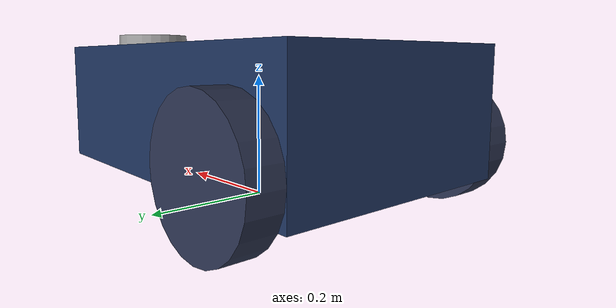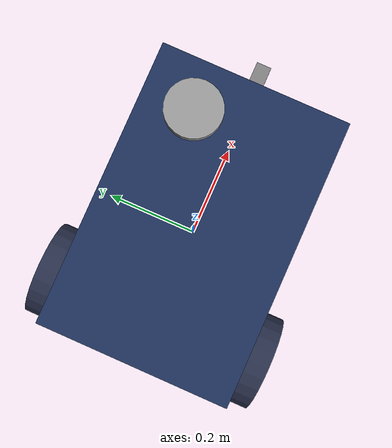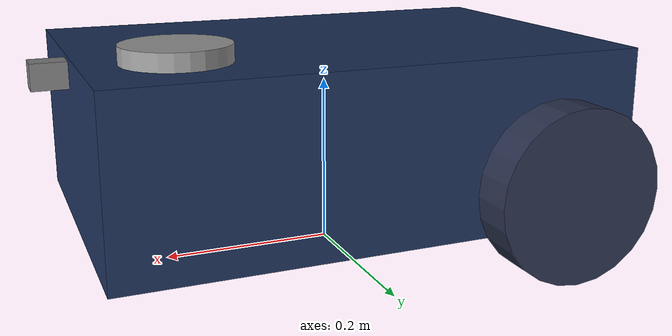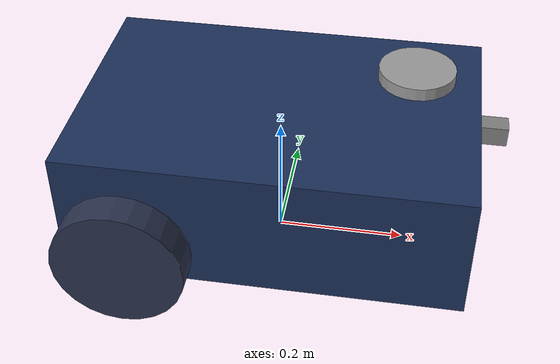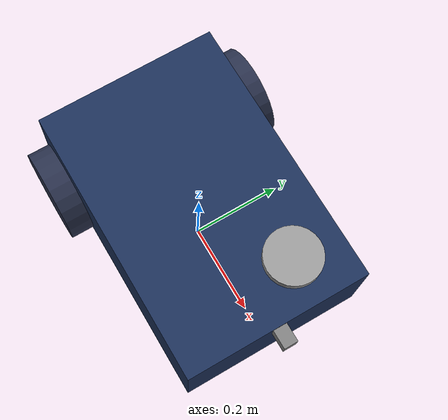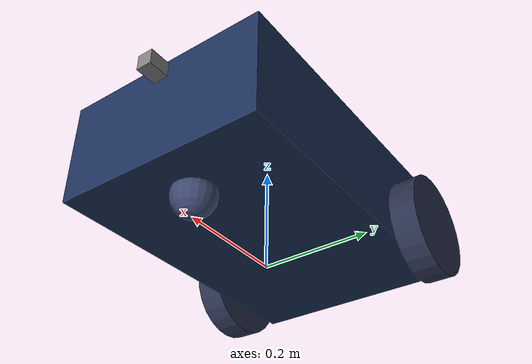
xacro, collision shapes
<?xml version="1.0"?>
<robot name="two_wheel_robot" xmlns:xacro="http://www.ros.org/wiki/xacro">

  <xacro:arg name="mesh_path" default="package://robot_description/meshes/"/>

  <xacro:property name="base_length" value="0.6"/>
  <xacro:property name="base_width" value="0.4"/>
  <xacro:property name="base_height" value="0.2"/>
  <xacro:property name="base_mass" value="5.0"/>

  <xacro:property name="caster_radius" value="0.04"/>
  <xacro:property name="caster_mass" value="0.1"/>

  <xacro:property name="wheel_radius" value="0.1"/>
  <xacro:property name="wheel_width" value="0.05"/>
  <xacro:property name="wheel_mass" value="0.5"/>

  <xacro:property name="wheel_x_offset" value="0.2"/>
  <xacro:property name="wheel_y_offset" value="0.225"/>
  <xacro:property name="wheel_z_offset" value="-0.05"/>

  <xacro:macro name="wheel" params="prefix x_reflect y_reflect">
    <joint name="${prefix}_wheel_joint" type="continuous">
      <parent link="base_link"/>
      <child link="${prefix}_wheel_link"/>
      <origin xyz="${x_reflect * wheel_x_offset} ${y_reflect * wheel_y_offset} ${wheel_z_offset}" rpy="0 0 0"/>
      <axis xyz="0 1 0"/>
    </joint>
    <link name="${prefix}_wheel_link">
      <visual>
        <origin xyz="0 0 0" rpy="${pi/2} 0 0"/>
        <geometry>
          <cylinder radius="${wheel_radius}" length="${wheel_width}"/>
        </geometry>
        <material name="wheel_color">
          <color rgba="0.162 0.192 0.299 1.0"/>
        </material>
      </visual>
      <collision>
        <origin xyz="0 0 0" rpy="${pi/2} 0 0"/>
        <geometry>
          <cylinder radius="${wheel_radius}" length="${wheel_width}"/>
        </geometry>
      </collision>
      <inertial>
        <mass value="${wheel_mass}"/>
        <origin xyz="0 0 0" rpy="${pi/2} 0 0"/>
        <inertia ixx="${(1/12) * wheel_mass * (3*wheel_radius*wheel_radius + wheel_width*wheel_width)}" ixy="0.0" ixz="0.0" iyy="${(1/12) * wheel_mass * (3*wheel_radius*wheel_radius + wheel_width*wheel_width)}" iyz="0.0" izz="${(1/2) * wheel_mass * (wheel_radius*wheel_radius)}"/>
      </inertial>
    </link>
  </xacro:macro>

  <link name="base_footprint"/>

  <joint name="base_footprint_joint" type="fixed">
    <parent link="base_footprint"/>
    <child link="base_link"/>
    <origin xyz="0 0 0.15" rpy="0 0 0"/>
  </joint>

  <link name="base_link">
    <visual>
      <geometry>
        <box size="${base_length} ${base_width} ${base_height}"/>
      </geometry>
      <material name="chassis_color">
        <color rgba="0.11 0.188 0.349 1.0"/>
      </material>
    </visual>
    <collision>
      <geometry>
        <box size="${base_length} ${base_width} ${base_height}"/>
      </geometry>
    </collision>
    <inertial>
      <mass value="${base_mass}"/>
      <origin xyz="0 0 0" rpy="0 0 0"/>
      <inertia ixx="${(1/12) * base_mass * (base_width*base_width + base_height*base_height)}" ixy="0.0" ixz="0.0" iyy="${(1/12) * base_mass * (base_length*base_length + base_height*base_height)}" iyz="0.0" izz="${(1/12) * base_mass * (base_length*base_length + base_width*base_width)}"/>
    </inertial>
  </link>

  <xacro:wheel prefix="rear_left" x_reflect="-1" y_reflect="1"/>
  <xacro:wheel prefix="rear_right" x_reflect="-1" y_reflect="-1"/>

  <joint name="caster_wheel_joint" type="fixed">
    <parent link="base_link"/>
    <child link="caster_wheel"/>
    <origin xyz="0.2 0 -0.11" rpy="0 0 0"/>
  </joint>

  <link name="caster_wheel">
    <visual>
      <geometry>
        <sphere radius="${caster_radius}"/>
      </geometry>
      <material name="grey">
        <color rgba="0.231 0.275 0.427 1.0"/>
      </material>
    </visual>
    <collision>
      <geometry>
        <sphere radius="${caster_radius}"/>
      </geometry>
    </collision>
    <inertial>
      <mass value="${caster_mass}"/>
      <origin xyz="0 0 0" rpy="0 0 0"/>
      <inertia ixx="${(2/5)*caster_mass*caster_radius*caster_radius}" ixy="0.0" ixz="0.0" iyy="${(2/5)*caster_mass*caster_radius*caster_radius}" iyz="0.0" izz="${(2/5)*caster_mass*caster_radius*caster_radius}"/>
    </inertial>
  </link>

  <link name="lidar_link">
    <visual>
      <origin xyz="0 0 0" rpy="1.5708 0 0"/>
      <geometry>
        <mesh filename="$(arg mesh_path)lidar.STL" scale="0.001 0.001 0.001"/>
      </geometry>
      <material name="lidar_gray">
        <color rgba="0.6 0.6 0.6 1.0"/>
      </material>
    </visual>
    <collision>
      <origin xyz="0 0 0" rpy="0 0 0"/>
      <geometry>
        <cylinder radius="0.06" length="0.04"/>
      </geometry>
    </collision>
    <inertial>
      <mass value="0.2"/>
      <origin xyz="0 0 0" rpy="0 0 0"/>
      <inertia ixx="0.0001" ixy="0.0" ixz="0.0" iyy="0.0001" iyz="0.0" izz="0.0001"/>
    </inertial>
  </link>

  <joint name="lidar_joint" type="fixed">
    <parent link="base_link"/>
    <child link="lidar_link"/>
    <origin xyz="0.2 0.09 0.1" rpy="0 0 0"/>
  </joint>

  <link name="camera_link">
    <visual>
      <origin xyz="0 0 0" rpy="0 0 0"/>
      <geometry>
        <mesh filename="$(arg mesh_path)zed.stl"/>
      </geometry>
      <material name="camera_black">
        <color rgba="0.5 0.5 0.5 1.0"/>
      </material>
    </visual>
    <collision>
      <origin xyz="0 0 0" rpy="0 0 0"/>
      <geometry>
        <box size="0.08 0.03 0.03"/>
      </geometry>
    </collision>
    <inertial>
      <mass value="0.1"/>
      <origin xyz="0 0 0" rpy="0 0 0"/>
      <inertia ixx="0.00005" ixy="0.0" ixz="0.0" iyy="0.00005" iyz="0.0" izz="0.00005"/>
    </inertial>
  </link>

  <joint name="camera_joint" type="fixed">
    <parent link="base_link"/>
    <child link="camera_link"/>
    <origin xyz="0.3 0 0.08" rpy="0 0 0"/>
  </joint>

  <link name="camera_optical_link"/>

  <joint name="camera_optical_joint" type="fixed">
    <parent link="camera_link"/>
    <child link="camera_optical_link"/>
    <origin xyz="0 0 0" rpy="-1.5708 0 -1.5708"/>
  </joint>

</robot>
